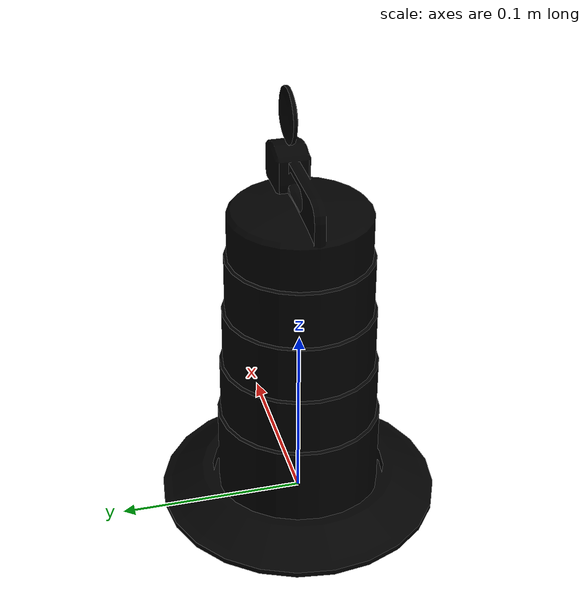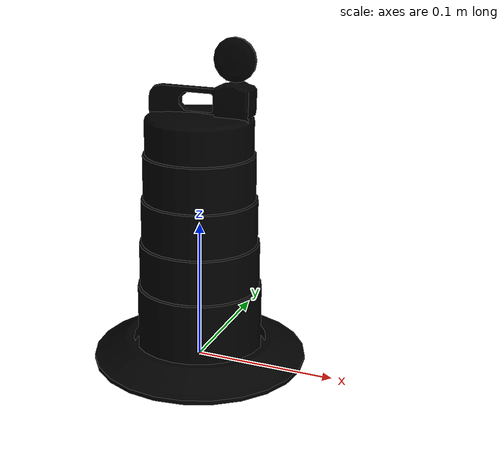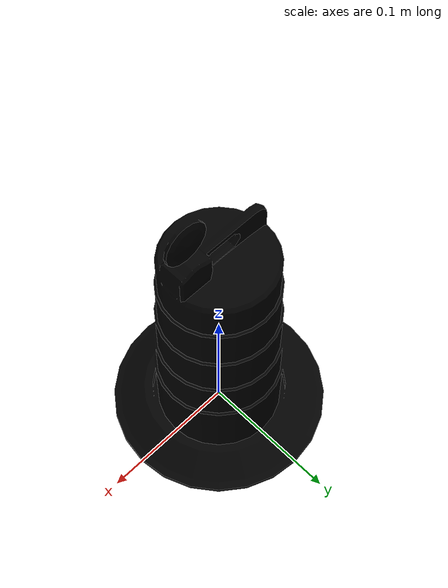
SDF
<?xml version='1.0'?>
<sdf version='1.6'>
  <model name='obstacle'>
    <link name='link'>
      <inertial>
        <pose frame=''>0 0 0.4 0 -0 0</pose>
        <mass>500</mass>
        <inertia>
          <ixx>51.2096</ixx>
          <iyy>51.2096</iyy>
          <izz>25</izz>
          <ixy>0</ixy>
          <ixz>0</ixz>
          <iyz>0</iyz>
        </inertia>
      </inertial>
      <self_collide>0</self_collide>
      <enable_wind>0</enable_wind>
      <kinematic>0</kinematic>
      <pose frame=''>0 0 0 0 -0 0</pose>
      <gravity>1</gravity>
      <visual name='visual'>
        <geometry>
          <mesh>
            <uri>model://construction_barrel/meshes/construction_barrel.dae</uri>
            <scale>0.15 0.15 0.15</scale>
          </mesh>
        </geometry>
        <pose frame=''>0 0 0 0 -0 0</pose>
        <transparency>0</transparency>
        <cast_shadows>1</cast_shadows>
        <material>
          <shader type='vertex'>
            <normal_map>__default__</normal_map>
          </shader>
          <script>
            <name>ModelPreview_1::link::visual_MATERIAL_</name>
            <uri>__default__</uri>
          </script>
          <ambient>0 0 0 1</ambient>
          <diffuse>0 0 0 1</diffuse>
          <specular>0 0 0 1</specular>
          <emissive>0 0 0 1</emissive>
        </material>
      </visual>
      <collision name='collision'>
        <laser_retro>0</laser_retro>
        <max_contacts>10</max_contacts>
        <pose frame=''>0 0 0 0 -0 0</pose>
        <geometry>
          <mesh>
            <uri>/home/tom/.gazebo/models/construction_barrel/meshes/construction_barrel.dae</uri>
            <scale>0.15 0.15 0.15</scale>
          </mesh>
        </geometry>
        <surface>
          <friction>
            <ode>
              <mu>1</mu>
              <mu2>1</mu2>
              <fdir1>0 0 0</fdir1>
              <slip1>0</slip1>
              <slip2>0</slip2>
            </ode>
            <torsional>
              <coefficient>1</coefficient>
              <patch_radius>0</patch_radius>
              <surface_radius>0</surface_radius>
              <use_patch_radius>1</use_patch_radius>
              <ode>
                <slip>0</slip>
              </ode>
            </torsional>
          </friction>
          <bounce>
            <restitution_coefficient>0</restitution_coefficient>
            <threshold>1e+06</threshold>
          </bounce>
          <contact>
            <collide_without_contact>0</collide_without_contact>
            <collide_without_contact_bitmask>1</collide_without_contact_bitmask>
            <collide_bitmask>1</collide_bitmask>
            <ode>
              <soft_cfm>0</soft_cfm>
              <soft_erp>0.2</soft_erp>
              <kp>1e+13</kp>
              <kd>1</kd>
              <max_vel>0.01</max_vel>
              <min_depth>0</min_depth>
            </ode>
            <bullet>
              <split_impulse>1</split_impulse>
              <split_impulse_penetration_threshold>-0.01</split_impulse_penetration_threshold>
              <soft_cfm>0</soft_cfm>
              <soft_erp>0.2</soft_erp>
              <kp>1e+13</kp>
              <kd>1</kd>
            </bullet>
          </contact>
        </surface>
      </collision>
    </link>
    <static>0</static>
    <allow_auto_disable>1</allow_auto_disable>
  </model>
</sdf>
